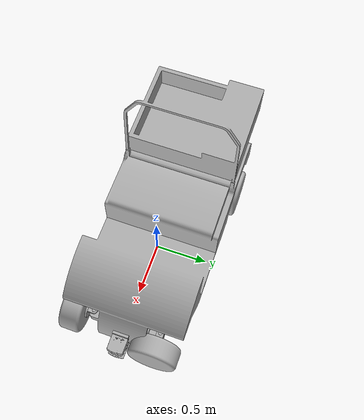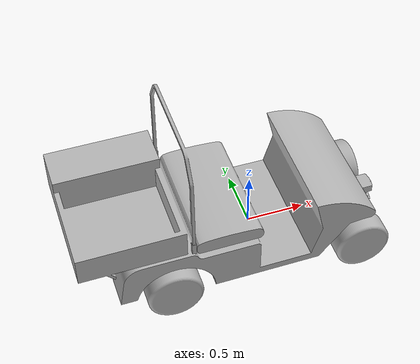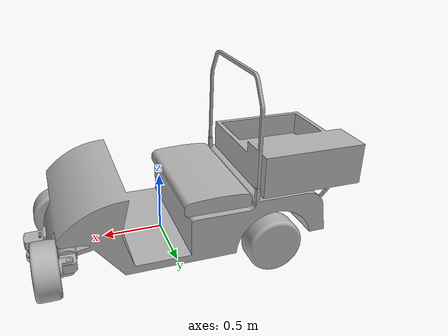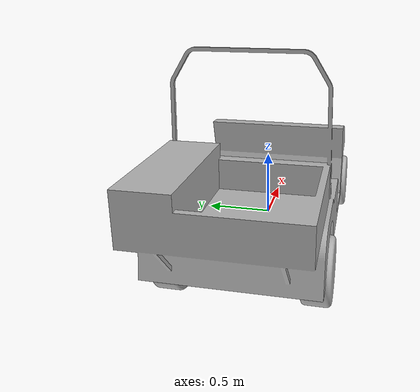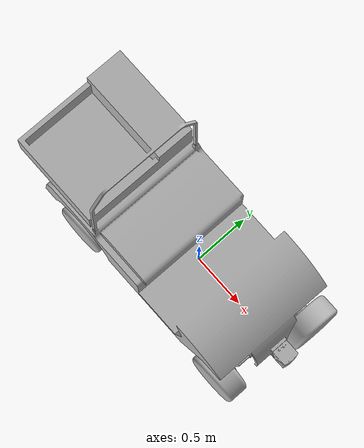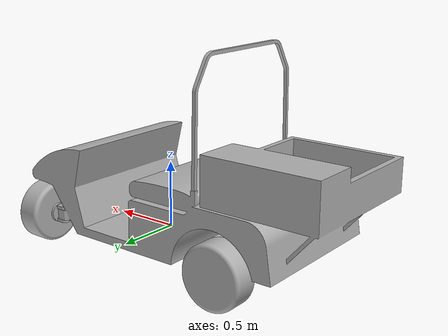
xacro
<?xml version="1.0" ?>
<robot name="caddy_ai2" xmlns:xacro="http://www.ros.org/wiki/xacro">

<xacro:include filename="$(find caddy_ai2_description)/urdf/materials.xacro" />
<xacro:include filename="$(find caddy_ai2_description)/urdf/caddy_ai2.trans" />
<xacro:include filename="$(find caddy_ai2_description)/urdf/caddy_ai2.gazebo" />
<link name="base_link">
  <inertial>
    <origin xyz="-0.37394134652960426 0.04474377035954571 0.578955145397471" rpy="0 0 0"/>
    <mass value="6911.347233417728"/>
    <inertia ixx="1013.115849" iyy="3529.517774" izz="3990.17869" ixy="237.674052" iyz="-86.909623" ixz="271.442423"/>
  </inertial>
  <visual>
    <origin xyz="0 0 0" rpy="0 0 0"/>
    <geometry>
      <mesh filename="package://caddy_ai2_description/meshes/base_link.stl" scale="0.001 0.001 0.001"/>
    </geometry>
    <material name="silver"/>
  </visual>
  <collision>
    <origin xyz="0 0 0" rpy="0 0 0"/>
    <geometry>
      <mesh filename="package://caddy_ai2_description/meshes/base_link.stl" scale="0.001 0.001 0.001"/>
    </geometry>
  </collision>
</link>

<link name="steering_hub_left_1">
  <inertial>
    <origin xyz="0.04503654747079244 -1.5755382293813902e-06 -0.06500000000000006" rpy="0 0 0"/>
    <mass value="4.494220600265263"/>
    <inertia ixx="0.01341" iyy="0.01229" izz="0.008238" ixy="0.0" iyz="0.0" ixz="-0.0"/>
  </inertial>
  <visual>
    <origin xyz="-0.825 -0.33 -0.3" rpy="0 0 0"/>
    <geometry>
      <mesh filename="package://caddy_ai2_description/meshes/steering_hub_left_1.stl" scale="0.001 0.001 0.001"/>
    </geometry>
    <material name="silver"/>
  </visual>
  <collision>
    <origin xyz="-0.825 -0.33 -0.3" rpy="0 0 0"/>
    <geometry>
      <mesh filename="package://caddy_ai2_description/meshes/steering_hub_left_1.stl" scale="0.001 0.001 0.001"/>
    </geometry>
  </collision>
</link>

<link name="steering_hub_right_1">
  <inertial>
    <origin xyz="0.045036547470792665 -1.5755382292148568e-06 -0.06500000000000006" rpy="0 0 0"/>
    <mass value="4.494220600265263"/>
    <inertia ixx="0.01341" iyy="0.01229" izz="0.008238" ixy="0.0" iyz="0.0" ixz="0.0"/>
  </inertial>
  <visual>
    <origin xyz="-0.825 0.33 -0.3" rpy="0 0 0"/>
    <geometry>
      <mesh filename="package://caddy_ai2_description/meshes/steering_hub_right_1.stl" scale="0.001 0.001 0.001"/>
    </geometry>
    <material name="silver"/>
  </visual>
  <collision>
    <origin xyz="-0.825 0.33 -0.3" rpy="0 0 0"/>
    <geometry>
      <mesh filename="package://caddy_ai2_description/meshes/steering_hub_right_1.stl" scale="0.001 0.001 0.001"/>
    </geometry>
  </collision>
</link>

<link name="wheel_front_right_1">
  <inertial>
    <origin xyz="0.1000001611093495 3.306197996488791e-07 5.551115123125783e-17" rpy="0 0 0"/>
    <mass value="268.03659227457297"/>
    <inertia ixx="7.294149" iyy="4.517093" izz="4.517093" ixy="0.0" iyz="-0.0" ixz="0.0"/>
  </inertial>
  <visual>
    <origin xyz="-0.898058 0.330002 -0.235" rpy="0 0 0"/>
    <geometry>
      <mesh filename="package://caddy_ai2_description/meshes/wheel_front_right_1.stl" scale="0.001 0.001 0.001"/>
    </geometry>
    <material name="silver"/>
  </visual>
  <collision>
    <origin xyz="-0.898058 0.330002 -0.235" rpy="0 0 0"/>
    <geometry>
      <mesh filename="package://caddy_ai2_description/meshes/wheel_front_right_1.stl" scale="0.001 0.001 0.001"/>
    </geometry>
  </collision>
</link>

<link name="wheel_front_left_1">
  <inertial>
    <origin xyz="0.10000016110934795 3.306197997599014e-07 5.551115123125783e-17" rpy="0 0 0"/>
    <mass value="268.03659227457297"/>
    <inertia ixx="7.294149" iyy="4.517093" izz="4.517093" ixy="0.0" iyz="-0.0" ixz="0.0"/>
  </inertial>
  <visual>
    <origin xyz="-0.898058 -0.329998 -0.235" rpy="0 0 0"/>
    <geometry>
      <mesh filename="package://caddy_ai2_description/meshes/wheel_front_left_1.stl" scale="0.001 0.001 0.001"/>
    </geometry>
    <material name="silver"/>
  </visual>
  <collision>
    <origin xyz="-0.898058 -0.329998 -0.235" rpy="0 0 0"/>
    <geometry>
      <mesh filename="package://caddy_ai2_description/meshes/wheel_front_left_1.stl" scale="0.001 0.001 0.001"/>
    </geometry>
  </collision>
</link>

<link name="wheel_rear_right_1">
  <inertial>
    <origin xyz="2.2948702271818888e-08 -0.10000000305175799 2.0302066416899578e-09" rpy="0 0 0"/>
    <mass value="268.03659227457297"/>
    <inertia ixx="4.517093" iyy="7.294149" izz="4.517093" ixy="0.0" iyz="-0.0" ixz="0.0"/>
  </inertial>
  <visual>
    <origin xyz="0.825 0.4018 -0.235" rpy="0 0 0"/>
    <geometry>
      <mesh filename="package://caddy_ai2_description/meshes/wheel_rear_right_1.stl" scale="0.001 0.001 0.001"/>
    </geometry>
    <material name="silver"/>
  </visual>
  <collision>
    <origin xyz="0.825 0.4018 -0.235" rpy="0 0 0"/>
    <geometry>
      <mesh filename="package://caddy_ai2_description/meshes/wheel_rear_right_1.stl" scale="0.001 0.001 0.001"/>
    </geometry>
  </collision>
</link>

<link name="wheel_rear_left_1">
  <inertial>
    <origin xyz="2.2948702271818888e-08 0.10000000305175755 2.0302066416899578e-09" rpy="0 0 0"/>
    <mass value="268.03659227457297"/>
    <inertia ixx="4.517093" iyy="7.294149" izz="4.517093" ixy="0.0" iyz="0.0" ixz="-0.0"/>
  </inertial>
  <visual>
    <origin xyz="0.825 -0.4018 -0.235" rpy="0 0 0"/>
    <geometry>
      <mesh filename="package://caddy_ai2_description/meshes/wheel_rear_left_1.stl" scale="0.001 0.001 0.001"/>
    </geometry>
    <material name="silver"/>
  </visual>
  <collision>
    <origin xyz="0.825 -0.4018 -0.235" rpy="0 0 0"/>
    <geometry>
      <mesh filename="package://caddy_ai2_description/meshes/wheel_rear_left_1.stl" scale="0.001 0.001 0.001"/>
    </geometry>
  </collision>
</link>

<link name="SICK_LMS291_1">
  <inertial>
    <origin xyz="0.07087581656184416 1.7016769843495403e-06 -0.24450398457225875" rpy="0 0 0"/>
    <mass value="29.182325361169905"/>
    <inertia ixx="0.137412" iyy="0.137225" izz="0.100203" ixy="3e-06" iyz="3e-06" ixz="-0.005719"/>
  </inertial>
  <visual>
    <origin xyz="-0.990124 -0.0 -0.505" rpy="0 0 0"/>
    <geometry>
      <mesh filename="package://caddy_ai2_description/meshes/SICK_LMS291_1.stl" scale="0.001 0.001 0.001"/>
    </geometry>
    <material name="silver"/>
  </visual>
  <collision>
    <origin xyz="-0.990124 -0.0 -0.505" rpy="0 0 0"/>
    <geometry>
      <mesh filename="package://caddy_ai2_description/meshes/SICK_LMS291_1.stl" scale="0.001 0.001 0.001"/>
    </geometry>
  </collision>
</link>

<joint name="steer_left_joint" type="revolute">
  <origin xyz="0.825 0.33 0.3" rpy="0 0 0"/>
  <parent link="base_link"/>
  <child link="steering_hub_left_1"/>
  <axis xyz="0.0 0.0 1.0"/>
  <limit upper="0.785398" lower="-0.785398" effort="100" velocity="100"/>
</joint>

<joint name="steer_right_joint" type="revolute">
  <origin xyz="0.825 -0.33 0.3" rpy="0 0 0"/>
  <parent link="base_link"/>
  <child link="steering_hub_right_1"/>
  <axis xyz="0.0 0.0 1.0"/>
  <limit upper="0.785398" lower="-0.785398" effort="100" velocity="100"/>
</joint>

<joint name="front_right_joint" type="continuous">
  <origin xyz="0.073058 -2e-06 -0.065" rpy="0 0 0"/>
  <parent link="steering_hub_right_1"/>
  <child link="wheel_front_right_1"/>
  <axis xyz="1.0 -0.0 0.0"/>
</joint>

<joint name="front_left_joint" type="continuous">
  <origin xyz="0.073058 -2e-06 -0.065" rpy="0 0 0"/>
  <parent link="steering_hub_left_1"/>
  <child link="wheel_front_left_1"/>
  <axis xyz="1.0 0.0 0.0"/>
</joint>

<joint name="rear_right_joint" type="continuous">
  <origin xyz="-0.825 -0.4018 0.235" rpy="0 0 0"/>
  <parent link="base_link"/>
  <child link="wheel_rear_right_1"/>
  <axis xyz="0.0 -1.0 0.0"/>
</joint>

<joint name="rear_left_joint" type="continuous">
  <origin xyz="-0.825 0.4018 0.235" rpy="0 0 0"/>
  <parent link="base_link"/>
  <child link="wheel_rear_left_1"/>
  <axis xyz="-0.0 1.0 0.0"/>
</joint>

<joint name="lidar_joint" type="fixed">
  <origin xyz="0.990124 0.0 0.505" rpy="0 0 0"/>
  <parent link="base_link"/>
  <child link="SICK_LMS291_1"/>
</joint>

</robot>

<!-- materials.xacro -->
<robot name="caddy_ai2" xmlns:xacro="http://www.ros.org/wiki/xacro" >

<material name="silver">
  <color rgba="0.700 0.700 0.700 1.000"/>
</material>

</robot>

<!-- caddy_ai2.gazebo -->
<robot name="caddy_ai2" xmlns:xacro="http://www.ros.org/wiki/xacro" >

<xacro:property name="body_color" value="Gazebo/Silver" />

<gazebo>
  <plugin name="control" filename="libgazebo_ros_control.so"/>
</gazebo>
<gazebo reference="base_link">
  <material>${body_color}</material>
  <mu1>0.2</mu1>
  <mu2>0.2</mu2>
  <selfCollide>true</selfCollide>
  <gravity>true</gravity>
</gazebo>

<gazebo reference="steering_hub_left_1">
  <material>${body_color}</material>
  <mu1>0.2</mu1>
  <mu2>0.2</mu2>
  <selfCollide>true</selfCollide>
</gazebo>

<gazebo reference="steering_hub_right_1">
  <material>${body_color}</material>
  <mu1>0.2</mu1>
  <mu2>0.2</mu2>
  <selfCollide>true</selfCollide>
</gazebo>

<gazebo reference="wheel_front_right_1">
  <material>${body_color}</material>
  <mu1>0.2</mu1>
  <mu2>0.2</mu2>
  <selfCollide>true</selfCollide>
</gazebo>

<gazebo reference="wheel_front_left_1">
  <material>${body_color}</material>
  <mu1>0.2</mu1>
  <mu2>0.2</mu2>
  <selfCollide>true</selfCollide>
</gazebo>

<gazebo reference="wheel_rear_right_1">
  <material>${body_color}</material>
  <mu1>0.2</mu1>
  <mu2>0.2</mu2>
  <selfCollide>true</selfCollide>
</gazebo>

<gazebo reference="wheel_rear_left_1">
  <material>${body_color}</material>
  <mu1>0.2</mu1>
  <mu2>0.2</mu2>
  <selfCollide>true</selfCollide>
</gazebo>

<gazebo reference="SICK_LMS291_1">
  <material>${body_color}</material>
  <mu1>0.2</mu1>
  <mu2>0.2</mu2>
  <selfCollide>true</selfCollide>
</gazebo>

</robot>
